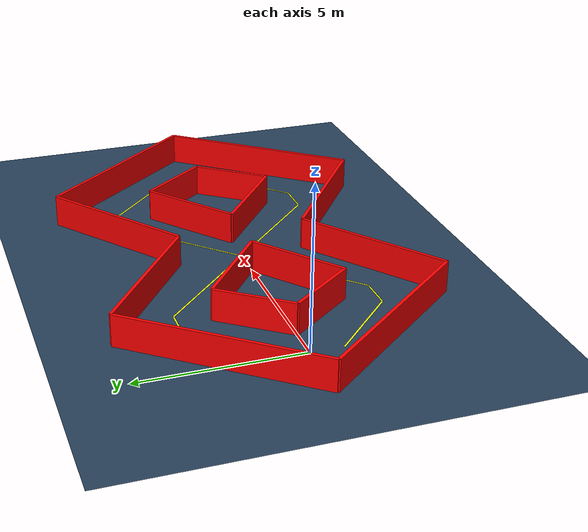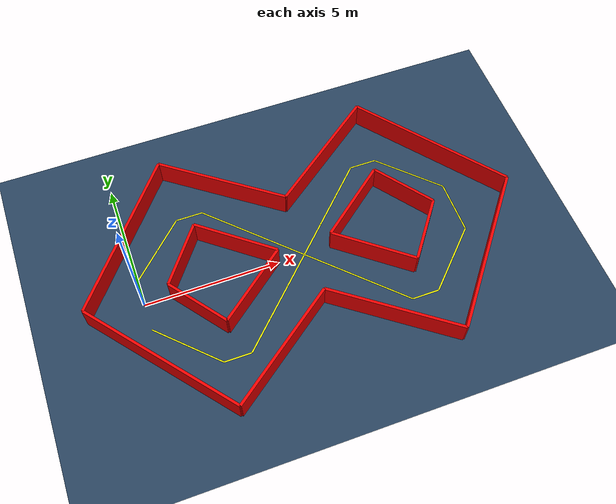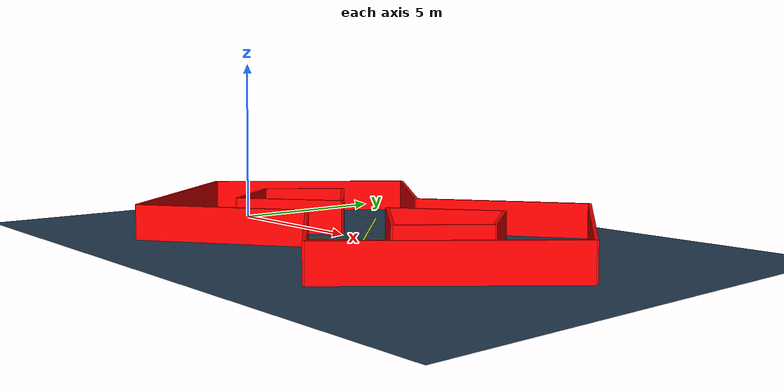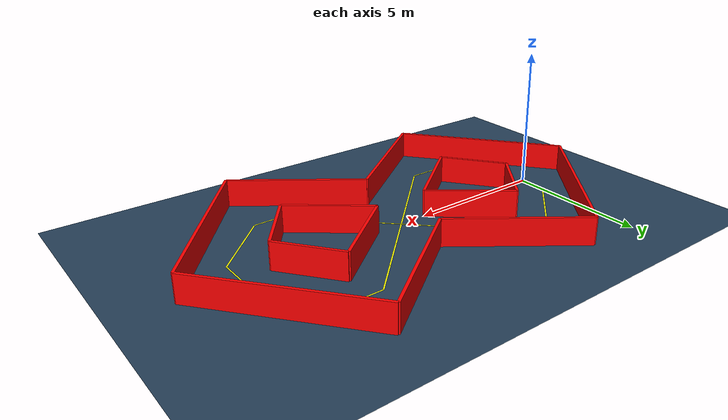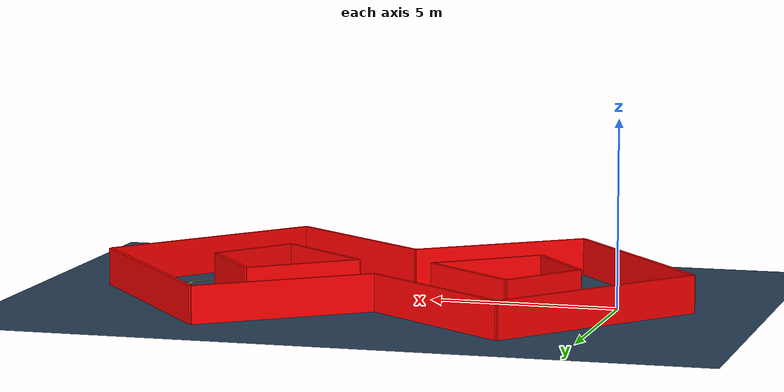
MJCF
<mujoco>
  <statistic center="0 0 0.1" extent="0.6" meansize=".05"/>

  <visual>
    <headlight diffuse="0.6 0.6 0.6" ambient="0.3 0.3 0.3" specular="0 0 0"/>
    <rgba haze="0.15 0.25 0.35 1"/>
    <global azimuth="-20" elevation="-20" ellipsoidinertia="true"/>
  </visual>

  <asset>
    <texture type="skybox" builtin="gradient" rgb1="0.3 0.5 0.7" rgb2="0 0 0" width="512" height="3072"/>
    <texture type="2d" name="groundplane" builtin="checker" mark="edge" rgb1="0.2 0.3 0.4" rgb2="0.1 0.2 0.3"
      markrgb="0.8 0.8 0.8" width="300" height="300"/>
    <material name="groundplane" texture="groundplane" texuniform="true" texrepeat="5 5" reflectance="0.2"/>
  </asset>

  <worldbody>
    <light pos="0 0 1.5" dir="0 0 -1" directional="true"/>
    <geom name="floor" size="0 0 0.05" type="plane" material="groundplane"/>

    <body pos='1.75 1.0 0.5' euler='0 0 53.13'>
        <geom type='box' size='1.25 0.05 0.5' rgba='1 0 0 1'/>
    </body>
    <body pos='3.75 1.0 0.5' euler='0 0 -38.66'>
        <geom type='box' size='1.60 0.05 0.5' rgba='1 0 0 1'/>
    </body>
    <body pos='3.75 -1.0 0.5' euler='0 0 -141.34'>
        <geom type='box' size='1.60 0.05 0.5' rgba='1 0 0 1'/>
    </body>
    <body pos='1.75 -1.0 0.5' euler='0 0 126.87'>
        <geom type='box' size='1.25 0.05 0.5' rgba='1 0 0 1'/>
    </body>
    <body pos='8.25 1.0 0.5' euler='0 0 38.66'>
        <geom type='box' size='1.60 0.05 0.5' rgba='1 0 0 1'/>
    </body>
    <body pos='10.25 1.0 0.5' euler='0 0 -53.13'>
        <geom type='box' size='1.25 0.05 0.5' rgba='1 0 0 1'/>
    </body>
    <body pos='10.25 -1.0 0.5' euler='0 0 -126.87'>
        <geom type='box' size='1.25 0.05 0.5' rgba='1 0 0 1'/>
    </body>
    <body pos='8.25 -1.0 0.5' euler='0 0 141.34'>
        <geom type='box' size='1.60 0.05 0.5' rgba='1 0 0 1'/>
    </body>
    <body pos='0.0 2.5 0.5' euler='0 0 51.34'>
        <geom type='box' size='3.20 0.05 0.5' rgba='1 0 0 1'/>
    </body>
    <body pos='4.0 3.5 0.5' euler='0 0 -36.87'>
        <geom type='box' size='2.5 0.05 0.5' rgba='1 0 0 1'/>
    </body>
    <body pos='8.0 3.5 0.5' euler='0 0 36.87'>
        <geom type='box' size='2.5 0.05 0.5' rgba='1 0 0 1'/>
    </body>
    <body pos='12.0 2.5 0.5' euler='0 0 -51.34'>
        <geom type='box' size='3.20 0.05 0.5' rgba='1 0 0 1'/>
    </body>
    <body pos='12.0 -2.5 0.5' euler='0 0 -128.66'>
        <geom type='box' size='3.20 0.05 0.5' rgba='1 0 0 1'/>
    </body>
    <body pos='8.0 -3.5 0.5' euler='0 0 143.13'>
        <geom type='box' size='2.5 0.05 0.5' rgba='1 0 0 1'/>
    </body>
    <body pos='4.0 -3.5 0.5' euler='0 0 -143.13'>
        <geom type='box' size='2.5 0.05 0.5' rgba='1 0 0 1'/>
    </body>
    <body pos='0.0 -2.5 0.5' euler='0 0 128.66'>
        <geom type='box' size='3.20 0.05 0.5' rgba='1 0 0 1'/>
    </body>

    <!-- Path Start -->
    <body pos='0.5 -1.5 5e-05' euler='0 0 -45.0'><geom type='box' size='0.7071067811865476 0.025 5e-05' rgba='1 1 0 1'/></body>
    <body pos='1.5 -2.5 5e-05' euler='0 0 -45.0'><geom type='box' size='0.7071067811865476 0.025 5e-05' rgba='1 1 0 1'/></body>
    <body pos='2.5 -3.0 5e-05' euler='0 0 0.0'><geom type='box' size='0.5 0.025 5e-05' rgba='1 1 0 1'/></body>
    <body pos='3.5 -2.5 5e-05' euler='0 0 45.0'><geom type='box' size='0.7071067811865476 0.025 5e-05' rgba='1 1 0 1'/></body>
    <body pos='4.5 -1.5 5e-05' euler='0 0 45.0'><geom type='box' size='0.7071067811865476 0.025 5e-05' rgba='1 1 0 1'/></body>
    <body pos='5.5 -0.5 5e-05' euler='0 0 45.0'><geom type='box' size='0.7071067811865476 0.025 5e-05' rgba='1 1 0 1'/></body>
    <body pos='6.5 0.5 5e-05' euler='0 0 45.0'><geom type='box' size='0.7071067811865476 0.025 5e-05' rgba='1 1 0 1'/></body>
    <body pos='7.5 1.5 5e-05' euler='0 0 45.0'><geom type='box' size='0.7071067811865476 0.025 5e-05' rgba='1 1 0 1'/></body>
    <body pos='8.5 2.5 5e-05' euler='0 0 45.0'><geom type='box' size='0.7071067811865476 0.025 5e-05' rgba='1 1 0 1'/></body>
    <body pos='9.5 3.0 5e-05' euler='0 0 0.0'><geom type='box' size='0.5 0.025 5e-05' rgba='1 1 0 1'/></body>
    <body pos='10.5 2.5 5e-05' euler='0 0 -45.0'><geom type='box' size='0.7071067811865476 0.025 5e-05' rgba='1 1 0 1'/></body>
    <body pos='11.5 1.5 5e-05' euler='0 0 -45.0'><geom type='box' size='0.7071067811865476 0.025 5e-05' rgba='1 1 0 1'/></body>
    <body pos='12.0 0.5 5e-05' euler='0 0 -90.0'><geom type='box' size='0.5 0.025 5e-05' rgba='1 1 0 1'/></body>
    <body pos='12.0 -0.5 5e-05' euler='0 0 -90.0'><geom type='box' size='0.5 0.025 5e-05' rgba='1 1 0 1'/></body>
    <body pos='11.5 -1.5 5e-05' euler='0 0 -135.0'><geom type='box' size='0.7071067811865476 0.025 5e-05' rgba='1 1 0 1'/></body>
    <body pos='10.5 -2.5 5e-05' euler='0 0 -135.0'><geom type='box' size='0.7071067811865476 0.025 5e-05' rgba='1 1 0 1'/></body>
    <body pos='9.5 -3.0 5e-05' euler='0 0 180.0'><geom type='box' size='0.5 0.025 5e-05' rgba='1 1 0 1'/></body>
    <body pos='8.5 -2.5 5e-05' euler='0 0 135.0'><geom type='box' size='0.7071067811865476 0.025 5e-05' rgba='1 1 0 1'/></body>
    <body pos='7.5 -1.5 5e-05' euler='0 0 135.0'><geom type='box' size='0.7071067811865476 0.025 5e-05' rgba='1 1 0 1'/></body>
    <body pos='6.0 0.0 5e-05' euler='0 0 135.0'><geom type='box' size='1.4142135623730951 0.025 5e-05' rgba='1 1 0 1'/></body>
    <body pos='4.5 1.5 5e-05' euler='0 0 135.0'><geom type='box' size='0.7071067811865476 0.025 5e-05' rgba='1 1 0 1'/></body>
    <body pos='3.5 2.5 5e-05' euler='0 0 135.0'><geom type='box' size='0.7071067811865476 0.025 5e-05' rgba='1 1 0 1'/></body>
    <body pos='2.5 3.0 5e-05' euler='0 0 180.0'><geom type='box' size='0.5 0.025 5e-05' rgba='1 1 0 1'/></body>
    <body pos='1.5 2.5 5e-05' euler='0 0 -135.0'><geom type='box' size='0.7071067811865476 0.025 5e-05' rgba='1 1 0 1'/></body>
    <body pos='0.5 1.5 5e-05' euler='0 0 -135.0'><geom type='box' size='0.7071067811865476 0.025 5e-05' rgba='1 1 0 1'/></body>
    <body pos='0.0 0.5 5e-05' euler='0 0 -90.0'><geom type='box' size='0.5 0.025 5e-05' rgba='1 1 0 1'/></body>
    <!-- Path End -->

  </worldbody>
</mujoco>
